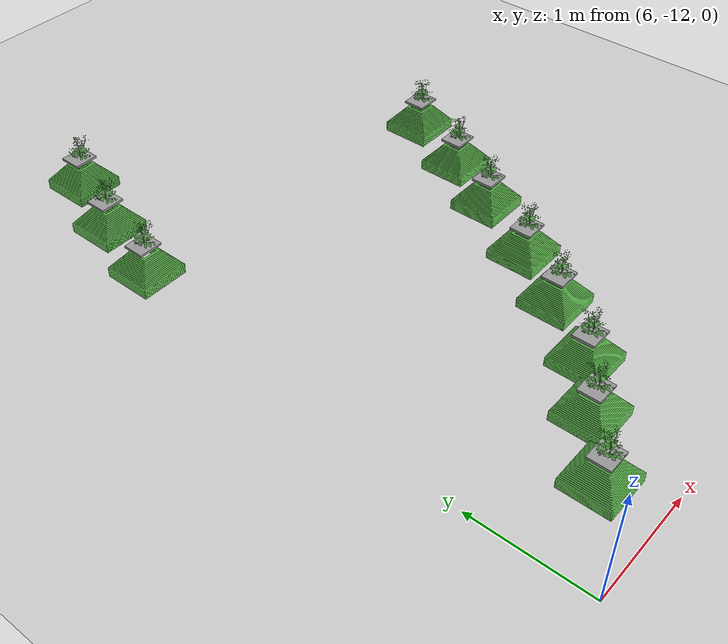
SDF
<sdf version="1.6">
 <world name="default">
  <model name="ground_plane">
   <static>1</static>
   <link name="link">
    <collision name="collision">
     <geometry><plane><normal>0 0 1</normal><size>100 100</size></plane></geometry>
     <surface><friction><ode><mu>100</mu><mu2>50</mu2></ode></friction></surface>
    </collision>
    <visual name="visual">
     <cast_shadows>0</cast_shadows>
     <geometry><plane><normal>0 0 1</normal><size>100 100</size></plane></geometry>
     <material>
      <script><uri>file://media/materials/scripts/gazebo.material</uri><name>Gazebo/Grey</name></script>
     </material>
    </visual>
   </link>
  </model>
  <model name="plant_127">
   <link name="link_0">
    <inertial>
     <mass>1</mass>
     <inertia>
      <ixx>0.0134051</ixx>
      <ixy>0</ixy>
      <ixz>0</ixz>
      <iyy>0.0134051</iyy>
      <iyz>0</iyz>
      <izz>0.0254102</izz>
     </inertia>
    </inertial>
    <gravity>0</gravity>
    <visual name="visual">
     <geometry><mesh><uri>model://square_pot/pot.stl</uri><scale>0.033 0.033 0.02</scale></mesh></geometry>
     <material>
      <lighting>1</lighting>
      <script><uri>file://media/materials/scripts/gazebo.material</uri><name>Gazebo/Grass</name></script>
      <ambient>0.3 0.3 0.3 1</ambient>
      <diffuse>0.7 0.7 0.7 1</diffuse>
      <specular>0.01 0.01 0.01 1</specular>
      <emissive>0 0 0 1</emissive>
      <shader type="vertex"><normal_map>__default__</normal_map></shader>
     </material>
    </visual>
    <collision name="collision">
     <pose>0 0 0.25 0 -0 0</pose>
     <geometry><box><size>0.4 0.4 0.4</size></box></geometry>
     <surface>
      <friction>
       <ode><mu>1</mu><mu2>1</mu2><fdir1>0 0 0</fdir1><slip1>0</slip1><slip2>0</slip2></ode>
       <torsional>
        <coefficient>1</coefficient>
        <patch_radius>0</patch_radius>
        <surface_radius>0</surface_radius>
        <use_patch_radius>1</use_patch_radius>
        <ode><slip>0</slip></ode>
       </torsional>
      </friction>
      <bounce><restitution_coefficient>0</restitution_coefficient><threshold>1e+06</threshold></bounce>
      <contact>
       <collide_without_contact>1</collide_without_contact>
       <collide_without_contact_bitmask>1</collide_without_contact_bitmask>
       <collide_bitmask>1</collide_bitmask>
       <ode>
        <soft_cfm>0</soft_cfm>
        <soft_erp>0.2</soft_erp>
        <kp>1e+13</kp>
        <kd>1</kd>
        <max_vel>0.01</max_vel>
        <min_depth>0</min_depth>
       </ode>
       <bullet>
        <split_impulse>1</split_impulse>
        <split_impulse_penetration_threshold>-0.01</split_impulse_penetration_threshold>
        <soft_cfm>0</soft_cfm>
        <soft_erp>0.2</soft_erp>
        <kp>1e+13</kp>
        <kd>1</kd>
       </bullet>
      </contact>
     </surface>
    </collision>
   </link>
   <link name="link_0_0">
    <pose>-0.011441 -0.008338 0.308474 0 -0 0</pose>
    <inertial>
     <mass>0.000736153</mass>
     <inertia>
      <ixx>2.11165e-06</ixx>
      <ixy>0</ixy>
      <ixz>0</ixz>
      <iyy>2.64382e-06</iyy>
      <iyz>0</iyz>
      <izz>4.70976e-06</izz>
     </inertia>
    </inertial>
    <visual name="visual">
     <geometry><box><size>0.206678 0.18452 0.019291</size></box></geometry>
     <material>
      <lighting>1</lighting>
      <script><uri>file://media/materials/scripts/gazebo.material</uri><name>Gazebo/Grey</name></script>
      <ambient>0.3 0.3 0.3 1</ambient>
      <diffuse>0.7 0.7 0.7 1</diffuse>
      <specular>0.01 0.01 0.01 1</specular>
      <emissive>0 0 0 1</emissive>
     </material>
    </visual>
    <collision name="collision">
     <geometry><box><size>0.206678 0.18452 0.019291</size></box></geometry>
     <surface>
      <friction>
       <ode><mu>1</mu><mu2>1</mu2><fdir1>0 0 0</fdir1><slip1>0</slip1><slip2>0</slip2></ode>
       <torsional>
        <coefficient>1</coefficient>
        <patch_radius>0</patch_radius>
        <surface_radius>0</surface_radius>
        <use_patch_radius>1</use_patch_radius>
        <ode><slip>0</slip></ode>
       </torsional>
      </friction>
      <bounce><restitution_coefficient>0</restitution_coefficient><threshold>1e+06</threshold></bounce>
      <contact>
       <collide_without_contact>0</collide_without_contact>
       <collide_without_contact_bitmask>1</collide_without_contact_bitmask>
       <collide_bitmask>1</collide_bitmask>
       <ode>
        <soft_cfm>0</soft_cfm>
        <soft_erp>0.2</soft_erp>
        <kp>1e+13</kp>
        <kd>1</kd>
        <max_vel>0.01</max_vel>
        <min_depth>0</min_depth>
       </ode>
       <bullet>
        <split_impulse>1</split_impulse>
        <split_impulse_penetration_threshold>-0.01</split_impulse_penetration_threshold>
        <soft_cfm>0</soft_cfm>
        <soft_erp>0.2</soft_erp>
        <kp>1e+13</kp>
        <kd>1</kd>
       </bullet>
      </contact>
     </surface>
    </collision>
   </link>
   <static>1</static>
   <pose>6.69006 -6.56863 0 0 -0 0</pose>
  </model>
  <model name="plant_128">
   <link name="link_0">
    <inertial>
     <mass>1</mass>
     <inertia>
      <ixx>0.0134051</ixx>
      <ixy>0</ixy>
      <ixz>0</ixz>
      <iyy>0.0134051</iyy>
      <iyz>0</iyz>
      <izz>0.0254102</izz>
     </inertia>
    </inertial>
    <gravity>0</gravity>
    <visual name="visual">
     <geometry><mesh><uri>model://square_pot/pot.stl</uri><scale>0.033 0.033 0.02</scale></mesh></geometry>
     <material>
      <lighting>1</lighting>
      <script><uri>file://media/materials/scripts/gazebo.material</uri><name>Gazebo/Grass</name></script>
      <ambient>0.3 0.3 0.3 1</ambient>
      <diffuse>0.7 0.7 0.7 1</diffuse>
      <specular>0.01 0.01 0.01 1</specular>
      <emissive>0 0 0 1</emissive>
      <shader type="vertex"><normal_map>__default__</normal_map></shader>
     </material>
    </visual>
    <collision name="collision">
     <pose>0 0 0.25 0 -0 0</pose>
     <geometry><box><size>0.4 0.4 0.4</size></box></geometry>
     <surface>
      <friction>
       <ode><mu>1</mu><mu2>1</mu2><fdir1>0 0 0</fdir1><slip1>0</slip1><slip2>0</slip2></ode>
       <torsional>
        <coefficient>1</coefficient>
        <patch_radius>0</patch_radius>
        <surface_radius>0</surface_radius>
        <use_patch_radius>1</use_patch_radius>
        <ode><slip>0</slip></ode>
       </torsional>
      </friction>
      <bounce><restitution_coefficient>0</restitution_coefficient><threshold>1e+06</threshold></bounce>
      <contact>
       <collide_without_contact>1</collide_without_contact>
       <collide_without_contact_bitmask>1</collide_without_contact_bitmask>
       <collide_bitmask>1</collide_bitmask>
       <ode>
        <soft_cfm>0</soft_cfm>
        <soft_erp>0.2</soft_erp>
        <kp>1e+13</kp>
        <kd>1</kd>
        <max_vel>0.01</max_vel>
        <min_depth>0</min_depth>
       </ode>
       <bullet>
        <split_impulse>1</split_impulse>
        <split_impulse_penetration_threshold>-0.01</split_impulse_penetration_threshold>
        <soft_cfm>0</soft_cfm>
        <soft_erp>0.2</soft_erp>
        <kp>1e+13</kp>
        <kd>1</kd>
       </bullet>
      </contact>
     </surface>
    </collision>
   </link>
   <link name="link_0_0">
    <pose>-0.011441 -0.008338 0.308474 0 -0 0</pose>
    <inertial>
     <mass>0.000736153</mass>
     <inertia>
      <ixx>2.11165e-06</ixx>
      <ixy>0</ixy>
      <ixz>0</ixz>
      <iyy>2.64382e-06</iyy>
      <iyz>0</iyz>
      <izz>4.70976e-06</izz>
     </inertia>
    </inertial>
    <visual name="visual">
     <geometry><box><size>0.206678 0.18452 0.019291</size></box></geometry>
     <material>
      <lighting>1</lighting>
      <script><uri>file://media/materials/scripts/gazebo.material</uri><name>Gazebo/Grey</name></script>
      <ambient>0.3 0.3 0.3 1</ambient>
      <diffuse>0.7 0.7 0.7 1</diffuse>
      <specular>0.01 0.01 0.01 1</specular>
      <emissive>0 0 0 1</emissive>
     </material>
    </visual>
    <collision name="collision">
     <geometry><box><size>0.206678 0.18452 0.019291</size></box></geometry>
     <surface>
      <friction>
       <ode><mu>1</mu><mu2>1</mu2><fdir1>0 0 0</fdir1><slip1>0</slip1><slip2>0</slip2></ode>
       <torsional>
        <coefficient>1</coefficient>
        <patch_radius>0</patch_radius>
        <surface_radius>0</surface_radius>
        <use_patch_radius>1</use_patch_radius>
        <ode><slip>0</slip></ode>
       </torsional>
      </friction>
      <bounce><restitution_coefficient>0</restitution_coefficient><threshold>1e+06</threshold></bounce>
      <contact>
       <collide_without_contact>0</collide_without_contact>
       <collide_without_contact_bitmask>1</collide_without_contact_bitmask>
       <collide_bitmask>1</collide_bitmask>
       <ode>
        <soft_cfm>0</soft_cfm>
        <soft_erp>0.2</soft_erp>
        <kp>1e+13</kp>
        <kd>1</kd>
        <max_vel>0.01</max_vel>
        <min_depth>0</min_depth>
       </ode>
       <bullet>
        <split_impulse>1</split_impulse>
        <split_impulse_penetration_threshold>-0.01</split_impulse_penetration_threshold>
        <soft_cfm>0</soft_cfm>
        <soft_erp>0.2</soft_erp>
        <kp>1e+13</kp>
        <kd>1</kd>
       </bullet>
      </contact>
     </surface>
    </collision>
   </link>
   <static>1</static>
   <pose>6.43751 -7.18429 0 0 -0 0</pose>
  </model>
  <model name="plant_129">
   <link name="link_0">
    <inertial>
     <mass>1</mass>
     <inertia>
      <ixx>0.0134051</ixx>
      <ixy>0</ixy>
      <ixz>0</ixz>
      <iyy>0.0134051</iyy>
      <iyz>0</iyz>
      <izz>0.0254102</izz>
     </inertia>
    </inertial>
    <gravity>0</gravity>
    <visual name="visual">
     <geometry><mesh><uri>model://square_pot/pot.stl</uri><scale>0.033 0.033 0.02</scale></mesh></geometry>
     <material>
      <lighting>1</lighting>
      <script><uri>file://media/materials/scripts/gazebo.material</uri><name>Gazebo/Grass</name></script>
      <ambient>0.3 0.3 0.3 1</ambient>
      <diffuse>0.7 0.7 0.7 1</diffuse>
      <specular>0.01 0.01 0.01 1</specular>
      <emissive>0 0 0 1</emissive>
      <shader type="vertex"><normal_map>__default__</normal_map></shader>
     </material>
    </visual>
    <collision name="collision">
     <pose>0 0 0.25 0 -0 0</pose>
     <geometry><box><size>0.4 0.4 0.4</size></box></geometry>
     <surface>
      <friction>
       <ode><mu>1</mu><mu2>1</mu2><fdir1>0 0 0</fdir1><slip1>0</slip1><slip2>0</slip2></ode>
       <torsional>
        <coefficient>1</coefficient>
        <patch_radius>0</patch_radius>
        <surface_radius>0</surface_radius>
        <use_patch_radius>1</use_patch_radius>
        <ode><slip>0</slip></ode>
       </torsional>
      </friction>
      <bounce><restitution_coefficient>0</restitution_coefficient><threshold>1e+06</threshold></bounce>
      <contact>
       <collide_without_contact>1</collide_without_contact>
       <collide_without_contact_bitmask>1</collide_without_contact_bitmask>
       <collide_bitmask>1</collide_bitmask>
       <ode>
        <soft_cfm>0</soft_cfm>
        <soft_erp>0.2</soft_erp>
        <kp>1e+13</kp>
        <kd>1</kd>
        <max_vel>0.01</max_vel>
        <min_depth>0</min_depth>
       </ode>
       <bullet>
        <split_impulse>1</split_impulse>
        <split_impulse_penetration_threshold>-0.01</split_impulse_penetration_threshold>
        <soft_cfm>0</soft_cfm>
        <soft_erp>0.2</soft_erp>
        <kp>1e+13</kp>
        <kd>1</kd>
       </bullet>
      </contact>
     </surface>
    </collision>
   </link>
   <link name="link_0_0">
    <pose>-0.011441 -0.008338 0.308474 0 -0 0</pose>
    <inertial>
     <mass>0.000736153</mass>
     <inertia>
      <ixx>2.11165e-06</ixx>
      <ixy>0</ixy>
      <ixz>0</ixz>
      <iyy>2.64382e-06</iyy>
      <iyz>0</iyz>
      <izz>4.70976e-06</izz>
     </inertia>
    </inertial>
    <visual name="visual">
     <geometry><box><size>0.206678 0.18452 0.019291</size></box></geometry>
     <material>
      <lighting>1</lighting>
      <script><uri>file://media/materials/scripts/gazebo.material</uri><name>Gazebo/Grey</name></script>
      <ambient>0.3 0.3 0.3 1</ambient>
      <diffuse>0.7 0.7 0.7 1</diffuse>
      <specular>0.01 0.01 0.01 1</specular>
      <emissive>0 0 0 1</emissive>
     </material>
    </visual>
    <collision name="collision">
     <geometry><box><size>0.206678 0.18452 0.019291</size></box></geometry>
     <surface>
      <friction>
       <ode><mu>1</mu><mu2>1</mu2><fdir1>0 0 0</fdir1><slip1>0</slip1><slip2>0</slip2></ode>
       <torsional>
        <coefficient>1</coefficient>
        <patch_radius>0</patch_radius>
        <surface_radius>0</surface_radius>
        <use_patch_radius>1</use_patch_radius>
        <ode><slip>0</slip></ode>
       </torsional>
      </friction>
      <bounce><restitution_coefficient>0</restitution_coefficient><threshold>1e+06</threshold></bounce>
      <contact>
       <collide_without_contact>0</collide_without_contact>
       <collide_without_contact_bitmask>1</collide_without_contact_bitmask>
       <collide_bitmask>1</collide_bitmask>
       <ode>
        <soft_cfm>0</soft_cfm>
        <soft_erp>0.2</soft_erp>
        <kp>1e+13</kp>
        <kd>1</kd>
        <max_vel>0.01</max_vel>
        <min_depth>0</min_depth>
       </ode>
       <bullet>
        <split_impulse>1</split_impulse>
        <split_impulse_penetration_threshold>-0.01</split_impulse_penetration_threshold>
        <soft_cfm>0</soft_cfm>
        <soft_erp>0.2</soft_erp>
        <kp>1e+13</kp>
        <kd>1</kd>
       </bullet>
      </contact>
     </surface>
    </collision>
   </link>
   <static>1</static>
   <pose>6.25957 -7.82144 0 0 -0 0</pose>
  </model>
  <model name="plant_134">
   <link name="link_0">
    <inertial>
     <mass>1</mass>
     <inertia>
      <ixx>0.0134051</ixx>
      <ixy>0</ixy>
      <ixz>0</ixz>
      <iyy>0.0134051</iyy>
      <iyz>0</iyz>
      <izz>0.0254102</izz>
     </inertia>
    </inertial>
    <gravity>0</gravity>
    <visual name="visual">
     <geometry><mesh><uri>model://square_pot/pot.stl</uri><scale>0.033 0.033 0.02</scale></mesh></geometry>
     <material>
      <lighting>1</lighting>
      <script><uri>file://media/materials/scripts/gazebo.material</uri><name>Gazebo/Grass</name></script>
      <ambient>0.3 0.3 0.3 1</ambient>
      <diffuse>0.7 0.7 0.7 1</diffuse>
      <specular>0.01 0.01 0.01 1</specular>
      <emissive>0 0 0 1</emissive>
      <shader type="vertex"><normal_map>__default__</normal_map></shader>
     </material>
    </visual>
    <collision name="collision">
     <pose>0 0 0.25 0 -0 0</pose>
     <geometry><box><size>0.4 0.4 0.4</size></box></geometry>
     <surface>
      <friction>
       <ode><mu>1</mu><mu2>1</mu2><fdir1>0 0 0</fdir1><slip1>0</slip1><slip2>0</slip2></ode>
       <torsional>
        <coefficient>1</coefficient>
        <patch_radius>0</patch_radius>
        <surface_radius>0</surface_radius>
        <use_patch_radius>1</use_patch_radius>
        <ode><slip>0</slip></ode>
       </torsional>
      </friction>
      <bounce><restitution_coefficient>0</restitution_coefficient><threshold>1e+06</threshold></bounce>
      <contact>
       <collide_without_contact>1</collide_without_contact>
       <collide_without_contact_bitmask>1</collide_without_contact_bitmask>
       <collide_bitmask>1</collide_bitmask>
       <ode>
        <soft_cfm>0</soft_cfm>
        <soft_erp>0.2</soft_erp>
        <kp>1e+13</kp>
        <kd>1</kd>
        <max_vel>0.01</max_vel>
        <min_depth>0</min_depth>
       </ode>
       <bullet>
        <split_impulse>1</split_impulse>
        <split_impulse_penetration_threshold>-0.01</split_impulse_penetration_threshold>
        <soft_cfm>0</soft_cfm>
        <soft_erp>0.2</soft_erp>
        <kp>1e+13</kp>
        <kd>1</kd>
       </bullet>
      </contact>
     </surface>
    </collision>
   </link>
   <link name="link_0_0">
    <pose>-0.011441 -0.008338 0.308474 0 -0 0</pose>
    <inertial>
     <mass>0.000736153</mass>
     <inertia>
      <ixx>2.11165e-06</ixx>
      <ixy>0</ixy>
      <ixz>0</ixz>
      <iyy>2.64382e-06</iyy>
      <iyz>0</iyz>
      <izz>4.70976e-06</izz>
     </inertia>
    </inertial>
    <visual name="visual">
     <geometry><box><size>0.206678 0.18452 0.019291</size></box></geometry>
     <material>
      <lighting>1</lighting>
      <script><uri>file://media/materials/scripts/gazebo.material</uri><name>Gazebo/Grey</name></script>
      <ambient>0.3 0.3 0.3 1</ambient>
      <diffuse>0.7 0.7 0.7 1</diffuse>
      <specular>0.01 0.01 0.01 1</specular>
      <emissive>0 0 0 1</emissive>
     </material>
    </visual>
    <collision name="collision">
     <geometry><box><size>0.206678 0.18452 0.019291</size></box></geometry>
     <surface>
      <friction>
       <ode><mu>1</mu><mu2>1</mu2><fdir1>0 0 0</fdir1><slip1>0</slip1><slip2>0</slip2></ode>
       <torsional>
        <coefficient>1</coefficient>
        <patch_radius>0</patch_radius>
        <surface_radius>0</surface_radius>
        <use_patch_radius>1</use_patch_radius>
        <ode><slip>0</slip></ode>
       </torsional>
      </friction>
      <bounce><restitution_coefficient>0</restitution_coefficient><threshold>1e+06</threshold></bounce>
      <contact>
       <collide_without_contact>0</collide_without_contact>
       <collide_without_contact_bitmask>1</collide_without_contact_bitmask>
       <collide_bitmask>1</collide_bitmask>
       <ode>
        <soft_cfm>0</soft_cfm>
        <soft_erp>0.2</soft_erp>
        <kp>1e+13</kp>
        <kd>1</kd>
        <max_vel>0.01</max_vel>
        <min_depth>0</min_depth>
       </ode>
       <bullet>
        <split_impulse>1</split_impulse>
        <split_impulse_penetration_threshold>-0.01</split_impulse_penetration_threshold>
        <soft_cfm>0</soft_cfm>
        <soft_erp>0.2</soft_erp>
        <kp>1e+13</kp>
        <kd>1</kd>
       </bullet>
      </contact>
     </surface>
    </collision>
   </link>
   <static>1</static>
   <pose>9.24963 -8.19377 0 0 -0 0</pose>
  </model>
  <model name="plant_135">
   <link name="link_0">
    <inertial>
     <mass>1</mass>
     <inertia>
      <ixx>0.0134051</ixx>
      <ixy>0</ixy>
      <ixz>0</ixz>
      <iyy>0.0134051</iyy>
      <iyz>0</iyz>
      <izz>0.0254102</izz>
     </inertia>
    </inertial>
    <gravity>0</gravity>
    <visual name="visual">
     <geometry><mesh><uri>model://square_pot/pot.stl</uri><scale>0.033 0.033 0.02</scale></mesh></geometry>
     <material>
      <lighting>1</lighting>
      <script><uri>file://media/materials/scripts/gazebo.material</uri><name>Gazebo/Grass</name></script>
      <ambient>0.3 0.3 0.3 1</ambient>
      <diffuse>0.7 0.7 0.7 1</diffuse>
      <specular>0.01 0.01 0.01 1</specular>
      <emissive>0 0 0 1</emissive>
      <shader type="vertex"><normal_map>__default__</normal_map></shader>
     </material>
    </visual>
    <collision name="collision">
     <pose>0 0 0.25 0 -0 0</pose>
     <geometry><box><size>0.4 0.4 0.4</size></box></geometry>
     <surface>
      <friction>
       <ode><mu>1</mu><mu2>1</mu2><fdir1>0 0 0</fdir1><slip1>0</slip1><slip2>0</slip2></ode>
       <torsional>
        <coefficient>1</coefficient>
        <patch_radius>0</patch_radius>
        <surface_radius>0</surface_radius>
        <use_patch_radius>1</use_patch_radius>
        <ode><slip>0</slip></ode>
       </torsional>
      </friction>
      <bounce><restitution_coefficient>0</restitution_coefficient><threshold>1e+06</threshold></bounce>
      <contact>
       <collide_without_contact>1</collide_without_contact>
       <collide_without_contact_bitmask>1</collide_without_contact_bitmask>
       <collide_bitmask>1</collide_bitmask>
       <ode>
        <soft_cfm>0</soft_cfm>
        <soft_erp>0.2</soft_erp>
        <kp>1e+13</kp>
        <kd>1</kd>
        <max_vel>0.01</max_vel>
        <min_depth>0</min_depth>
       </ode>
       <bullet>
        <split_impulse>1</split_impulse>
        <split_impulse_penetration_threshold>-0.01</split_impulse_penetration_threshold>
        <soft_cfm>0</soft_cfm>
        <soft_erp>0.2</soft_erp>
        <kp>1e+13</kp>
        <kd>1</kd>
       </bullet>
      </contact>
     </surface>
    </collision>
   </link>
   <link name="link_0_0">
    <pose>-0.011441 -0.008338 0.308474 0 -0 0</pose>
    <inertial>
     <mass>0.000736153</mass>
     <inertia>
      <ixx>2.11165e-06</ixx>
      <ixy>0</ixy>
      <ixz>0</ixz>
      <iyy>2.64382e-06</iyy>
      <iyz>0</iyz>
      <izz>4.70976e-06</izz>
     </inertia>
    </inertial>
    <visual name="visual">
     <geometry><box><size>0.206678 0.18452 0.019291</size></box></geometry>
     <material>
      <lighting>1</lighting>
      <script><uri>file://media/materials/scripts/gazebo.material</uri><name>Gazebo/Grey</name></script>
      <ambient>0.3 0.3 0.3 1</ambient>
      <diffuse>0.7 0.7 0.7 1</diffuse>
      <specular>0.01 0.01 0.01 1</specular>
      <emissive>0 0 0 1</emissive>
     </material>
    </visual>
    <collision name="collision">
     <geometry><box><size>0.206678 0.18452 0.019291</size></box></geometry>
     <surface>
      <friction>
       <ode><mu>1</mu><mu2>1</mu2><fdir1>0 0 0</fdir1><slip1>0</slip1><slip2>0</slip2></ode>
       <torsional>
        <coefficient>1</coefficient>
        <patch_radius>0</patch_radius>
        <surface_radius>0</surface_radius>
        <use_patch_radius>1</use_patch_radius>
        <ode><slip>0</slip></ode>
       </torsional>
      </friction>
      <bounce><restitution_coefficient>0</restitution_coefficient><threshold>1e+06</threshold></bounce>
      <contact>
       <collide_without_contact>0</collide_without_contact>
       <collide_without_contact_bitmask>1</collide_without_contact_bitmask>
       <collide_bitmask>1</collide_bitmask>
       <ode>
        <soft_cfm>0</soft_cfm>
        <soft_erp>0.2</soft_erp>
        <kp>1e+13</kp>
        <kd>1</kd>
        <max_vel>0.01</max_vel>
        <min_depth>0</min_depth>
       </ode>
       <bullet>
        <split_impulse>1</split_impulse>
        <split_impulse_penetration_threshold>-0.01</split_impulse_penetration_threshold>
        <soft_cfm>0</soft_cfm>
        <soft_erp>0.2</soft_erp>
        <kp>1e+13</kp>
        <kd>1</kd>
       </bullet>
      </contact>
     </surface>
    </collision>
   </link>
   <static>1</static>
   <pose>8.97708 -8.79542 0 0 -0 0</pose>
  </model>
  <model name="plant_136">
   <link name="link_0">
    <inertial>
     <mass>1</mass>
     <inertia>
      <ixx>0.0134051</ixx>
      <ixy>0</ixy>
      <ixz>0</ixz>
      <iyy>0.0134051</iyy>
      <iyz>0</iyz>
      <izz>0.0254102</izz>
     </inertia>
    </inertial>
    <gravity>0</gravity>
    <visual name="visual">
     <geometry><mesh><uri>model://square_pot/pot.stl</uri><scale>0.033 0.033 0.02</scale></mesh></geometry>
     <material>
      <lighting>1</lighting>
      <script><uri>file://media/materials/scripts/gazebo.material</uri><name>Gazebo/Grass</name></script>
      <ambient>0.3 0.3 0.3 1</ambient>
      <diffuse>0.7 0.7 0.7 1</diffuse>
      <specular>0.01 0.01 0.01 1</specular>
      <emissive>0 0 0 1</emissive>
      <shader type="vertex"><normal_map>__default__</normal_map></shader>
     </material>
    </visual>
    <collision name="collision">
     <pose>0 0 0.25 0 -0 0</pose>
     <geometry><box><size>0.4 0.4 0.4</size></box></geometry>
     <surface>
      <friction>
       <ode><mu>1</mu><mu2>1</mu2><fdir1>0 0 0</fdir1><slip1>0</slip1><slip2>0</slip2></ode>
       <torsional>
        <coefficient>1</coefficient>
        <patch_radius>0</patch_radius>
        <surface_radius>0</surface_radius>
        <use_patch_radius>1</use_patch_radius>
        <ode><slip>0</slip></ode>
       </torsional>
      </friction>
      <bounce><restitution_coefficient>0</restitution_coefficient><threshold>1e+06</threshold></bounce>
      <contact>
       <collide_without_contact>1</collide_without_contact>
       <collide_without_contact_bitmask>1</collide_without_contact_bitmask>
       <collide_bitmask>1</collide_bitmask>
       <ode>
        <soft_cfm>0</soft_cfm>
        <soft_erp>0.2</soft_erp>
        <kp>1e+13</kp>
        <kd>1</kd>
        <max_vel>0.01</max_vel>
        <min_depth>0</min_depth>
       </ode>
       <bullet>
        <split_impulse>1</split_impulse>
        <split_impulse_penetration_threshold>-0.01</split_impulse_penetration_threshold>
        <soft_cfm>0</soft_cfm>
        <soft_erp>0.2</soft_erp>
        <kp>1e+13</kp>
        <kd>1</kd>
       </bullet>
      </contact>
     </surface>
    </collision>
   </link>
   <link name="link_0_0">
    <pose>-0.011441 -0.008338 0.308474 0 -0 0</pose>
    <inertial>
     <mass>0.000736153</mass>
     <inertia>
      <ixx>2.11165e-06</ixx>
      <ixy>0</ixy>
      <ixz>0</ixz>
      <iyy>2.64382e-06</iyy>
      <iyz>0</iyz>
      <izz>4.70976e-06</izz>
     </inertia>
    </inertial>
    <visual name="visual">
     <geometry><box><size>0.206678 0.18452 0.019291</size></box></geometry>
     <material>
      <lighting>1</lighting>
      <script><uri>file://media/materials/scripts/gazebo.material</uri><name>Gazebo/Grey</name></script>
      <ambient>0.3 0.3 0.3 1</ambient>
      <diffuse>0.7 0.7 0.7 1</diffuse>
      <specular>0.01 0.01 0.01 1</specular>
      <emissive>0 0 0 1</emissive>
     </material>
    </visual>
    <collision name="collision">
     <geometry><box><size>0.206678 0.18452 0.019291</size></box></geometry>
     <surface>
      <friction>
       <ode><mu>1</mu><mu2>1</mu2><fdir1>0 0 0</fdir1><slip1>0</slip1><slip2>0</slip2></ode>
       <torsional>
        <coefficient>1</coefficient>
        <patch_radius>0</patch_radius>
        <surface_radius>0</surface_radius>
        <use_patch_radius>1</use_patch_radius>
        <ode><slip>0</slip></ode>
       </torsional>
      </friction>
      <bounce><restitution_coefficient>0</restitution_coefficient><threshold>1e+06</threshold></bounce>
      <contact>
       <collide_without_contact>0</collide_without_contact>
       <collide_without_contact_bitmask>1</collide_without_contact_bitmask>
       <collide_bitmask>1</collide_bitmask>
       <ode>
        <soft_cfm>0</soft_cfm>
        <soft_erp>0.2</soft_erp>
        <kp>1e+13</kp>
        <kd>1</kd>
        <max_vel>0.01</max_vel>
        <min_depth>0</min_depth>
       </ode>
       <bullet>
        <split_impulse>1</split_impulse>
        <split_impulse_penetration_threshold>-0.01</split_impulse_penetration_threshold>
        <soft_cfm>0</soft_cfm>
        <soft_erp>0.2</soft_erp>
        <kp>1e+13</kp>
        <kd>1</kd>
       </bullet>
      </contact>
     </surface>
    </collision>
   </link>
   <static>1</static>
   <pose>8.68211 -9.32172 0 0 -0 0</pose>
  </model>
  <model name="plant_137">
   <link name="link_0">
    <inertial>
     <mass>1</mass>
     <inertia>
      <ixx>0.0134051</ixx>
      <ixy>0</ixy>
      <ixz>0</ixz>
      <iyy>0.0134051</iyy>
      <iyz>0</iyz>
      <izz>0.0254102</izz>
     </inertia>
    </inertial>
    <gravity>0</gravity>
    <visual name="visual">
     <geometry><mesh><uri>model://square_pot/pot.stl</uri><scale>0.033 0.033 0.02</scale></mesh></geometry>
     <material>
      <lighting>1</lighting>
      <script><uri>file://media/materials/scripts/gazebo.material</uri><name>Gazebo/Grass</name></script>
      <ambient>0.3 0.3 0.3 1</ambient>
      <diffuse>0.7 0.7 0.7 1</diffuse>
      <specular>0.01 0.01 0.01 1</specular>
      <emissive>0 0 0 1</emissive>
      <shader type="vertex"><normal_map>__default__</normal_map></shader>
     </material>
    </visual>
    <collision name="collision">
     <pose>0 0 0.25 0 -0 0</pose>
     <geometry><box><size>0.4 0.4 0.4</size></box></geometry>
     <surface>
      <friction>
       <ode><mu>1</mu><mu2>1</mu2><fdir1>0 0 0</fdir1><slip1>0</slip1><slip2>0</slip2></ode>
       <torsional>
        <coefficient>1</coefficient>
        <patch_radius>0</patch_radius>
        <surface_radius>0</surface_radius>
        <use_patch_radius>1</use_patch_radius>
        <ode><slip>0</slip></ode>
       </torsional>
      </friction>
      <bounce><restitution_coefficient>0</restitution_coefficient><threshold>1e+06</threshold></bounce>
      <contact>
       <collide_without_contact>1</collide_without_contact>
       <collide_without_contact_bitmask>1</collide_without_contact_bitmask>
       <collide_bitmask>1</collide_bitmask>
       <ode>
        <soft_cfm>0</soft_cfm>
        <soft_erp>0.2</soft_erp>
        <kp>1e+13</kp>
        <kd>1</kd>
        <max_vel>0.01</max_vel>
        <min_depth>0</min_depth>
       </ode>
       <bullet>
        <split_impulse>1</split_impulse>
        <split_impulse_penetration_threshold>-0.01</split_impulse_penetration_threshold>
        <soft_cfm>0</soft_cfm>
        <soft_erp>0.2</soft_erp>
        <kp>1e+13</kp>
        <kd>1</kd>
       </bullet>
      </contact>
     </surface>
    </collision>
   </link>
   <link name="link_0_0">
    <pose>-0.011441 -0.008338 0.308474 0 -0 0</pose>
    <inertial>
     <mass>0.000736153</mass>
     <inertia>
      <ixx>2.11165e-06</ixx>
      <ixy>0</ixy>
      <ixz>0</ixz>
      <iyy>2.64382e-06</iyy>
      <iyz>0</iyz>
      <izz>4.70976e-06</izz>
     </inertia>
    </inertial>
    <visual name="visual">
     <geometry><box><size>0.206678 0.18452 0.019291</size></box></geometry>
     <material>
      <lighting>1</lighting>
      <script><uri>file://media/materials/scripts/gazebo.material</uri><name>Gazebo/Grey</name></script>
      <ambient>0.3 0.3 0.3 1</ambient>
      <diffuse>0.7 0.7 0.7 1</diffuse>
      <specular>0.01 0.01 0.01 1</specular>
      <emissive>0 0 0 1</emissive>
     </material>
    </visual>
    <collision name="collision">
     <geometry><box><size>0.206678 0.18452 0.019291</size></box></geometry>
     <surface>
      <friction>
       <ode><mu>1</mu><mu2>1</mu2><fdir1>0 0 0</fdir1><slip1>0</slip1><slip2>0</slip2></ode>
       <torsional>
        <coefficient>1</coefficient>
        <patch_radius>0</patch_radius>
        <surface_radius>0</surface_radius>
        <use_patch_radius>1</use_patch_radius>
        <ode><slip>0</slip></ode>
       </torsional>
      </friction>
      <bounce><restitution_coefficient>0</restitution_coefficient><threshold>1e+06</threshold></bounce>
      <contact>
       <collide_without_contact>0</collide_without_contact>
       <collide_without_contact_bitmask>1</collide_without_contact_bitmask>
       <collide_bitmask>1</collide_bitmask>
       <ode>
        <soft_cfm>0</soft_cfm>
        <soft_erp>0.2</soft_erp>
        <kp>1e+13</kp>
        <kd>1</kd>
        <max_vel>0.01</max_vel>
        <min_depth>0</min_depth>
       </ode>
       <bullet>
        <split_impulse>1</split_impulse>
        <split_impulse_penetration_threshold>-0.01</split_impulse_penetration_threshold>
        <soft_cfm>0</soft_cfm>
        <soft_erp>0.2</soft_erp>
        <kp>1e+13</kp>
        <kd>1</kd>
       </bullet>
      </contact>
     </surface>
    </collision>
   </link>
   <static>1</static>
   <pose>8.34915 -9.91039 0 0 -0 0</pose>
  </model>
  <model name="plant_138">
   <link name="link_0">
    <inertial>
     <mass>1</mass>
     <inertia>
      <ixx>0.0134051</ixx>
      <ixy>0</ixy>
      <ixz>0</ixz>
      <iyy>0.0134051</iyy>
      <iyz>0</iyz>
      <izz>0.0254102</izz>
     </inertia>
    </inertial>
    <gravity>0</gravity>
    <visual name="visual">
     <geometry><mesh><uri>model://square_pot/pot.stl</uri><scale>0.033 0.033 0.02</scale></mesh></geometry>
     <material>
      <lighting>1</lighting>
      <script><uri>file://media/materials/scripts/gazebo.material</uri><name>Gazebo/Grass</name></script>
      <ambient>0.3 0.3 0.3 1</ambient>
      <diffuse>0.7 0.7 0.7 1</diffuse>
      <specular>0.01 0.01 0.01 1</specular>
      <emissive>0 0 0 1</emissive>
      <shader type="vertex"><normal_map>__default__</normal_map></shader>
     </material>
    </visual>
    <collision name="collision">
     <pose>0 0 0.25 0 -0 0</pose>
     <geometry><box><size>0.4 0.4 0.4</size></box></geometry>
     <surface>
      <friction>
       <ode><mu>1</mu><mu2>1</mu2><fdir1>0 0 0</fdir1><slip1>0</slip1><slip2>0</slip2></ode>
       <torsional>
        <coefficient>1</coefficient>
        <patch_radius>0</patch_radius>
        <surface_radius>0</surface_radius>
        <use_patch_radius>1</use_patch_radius>
        <ode><slip>0</slip></ode>
       </torsional>
      </friction>
      <bounce><restitution_coefficient>0</restitution_coefficient><threshold>1e+06</threshold></bounce>
      <contact>
       <collide_without_contact>1</collide_without_contact>
       <collide_without_contact_bitmask>1</collide_without_contact_bitmask>
       <collide_bitmask>1</collide_bitmask>
       <ode>
        <soft_cfm>0</soft_cfm>
        <soft_erp>0.2</soft_erp>
        <kp>1e+13</kp>
        <kd>1</kd>
        <max_vel>0.01</max_vel>
        <min_depth>0</min_depth>
       </ode>
       <bullet>
        <split_impulse>1</split_impulse>
        <split_impulse_penetration_threshold>-0.01</split_impulse_penetration_threshold>
        <soft_cfm>0</soft_cfm>
        <soft_erp>0.2</soft_erp>
        <kp>1e+13</kp>
        <kd>1</kd>
       </bullet>
      </contact>
     </surface>
    </collision>
   </link>
   <link name="link_0_0">
    <pose>-0.011441 -0.008338 0.308474 0 -0 0</pose>
    <inertial>
     <mass>0.000736153</mass>
     <inertia>
      <ixx>2.11165e-06</ixx>
      <ixy>0</ixy>
      <ixz>0</ixz>
      <iyy>2.64382e-06</iyy>
      <iyz>0</iyz>
      <izz>4.70976e-06</izz>
     </inertia>
    </inertial>
    <visual name="visual">
     <geometry><box><size>0.206678 0.18452 0.019291</size></box></geometry>
     <material>
      <lighting>1</lighting>
      <script><uri>file://media/materials/scripts/gazebo.material</uri><name>Gazebo/Grey</name></script>
      <ambient>0.3 0.3 0.3 1</ambient>
      <diffuse>0.7 0.7 0.7 1</diffuse>
      <specular>0.01 0.01 0.01 1</specular>
      <emissive>0 0 0 1</emissive>
     </material>
    </visual>
    <collision name="collision">
     <geometry><box><size>0.206678 0.18452 0.019291</size></box></geometry>
     <surface>
      <friction>
       <ode><mu>1</mu><mu2>1</mu2><fdir1>0 0 0</fdir1><slip1>0</slip1><slip2>0</slip2></ode>
       <torsional>
        <coefficient>1</coefficient>
        <patch_radius>0</patch_radius>
        <surface_radius>0</surface_radius>
        <use_patch_radius>1</use_patch_radius>
        <ode><slip>0</slip></ode>
       </torsional>
      </friction>
      <bounce><restitution_coefficient>0</restitution_coefficient><threshold>1e+06</threshold></bounce>
      <contact>
       <collide_without_contact>0</collide_without_contact>
       <collide_without_contact_bitmask>1</collide_without_contact_bitmask>
       <collide_bitmask>1</collide_bitmask>
       <ode>
        <soft_cfm>0</soft_cfm>
        <soft_erp>0.2</soft_erp>
        <kp>1e+13</kp>
        <kd>1</kd>
        <max_vel>0.01</max_vel>
        <min_depth>0</min_depth>
       </ode>
       <bullet>
        <split_impulse>1</split_impulse>
        <split_impulse_penetration_threshold>-0.01</split_impulse_penetration_threshold>
        <soft_cfm>0</soft_cfm>
        <soft_erp>0.2</soft_erp>
        <kp>1e+13</kp>
        <kd>1</kd>
       </bullet>
      </contact>
     </surface>
    </collision>
   </link>
   <static>1</static>
   <pose>8.02152 -10.4062 0 0 -0 0</pose>
  </model>
  <model name="plant_139">
   <link name="link_0">
    <inertial>
     <mass>1</mass>
     <inertia>
      <ixx>0.0134051</ixx>
      <ixy>0</ixy>
      <ixz>0</ixz>
      <iyy>0.0134051</iyy>
      <iyz>0</iyz>
      <izz>0.0254102</izz>
     </inertia>
    </inertial>
    <gravity>0</gravity>
    <visual name="visual">
     <geometry><mesh><uri>model://square_pot/pot.stl</uri><scale>0.033 0.033 0.02</scale></mesh></geometry>
     <material>
      <lighting>1</lighting>
      <script><uri>file://media/materials/scripts/gazebo.material</uri><name>Gazebo/Grass</name></script>
      <ambient>0.3 0.3 0.3 1</ambient>
      <diffuse>0.7 0.7 0.7 1</diffuse>
      <specular>0.01 0.01 0.01 1</specular>
      <emissive>0 0 0 1</emissive>
      <shader type="vertex"><normal_map>__default__</normal_map></shader>
     </material>
    </visual>
    <collision name="collision">
     <pose>0 0 0.25 0 -0 0</pose>
     <geometry><box><size>0.4 0.4 0.4</size></box></geometry>
     <surface>
      <friction>
       <ode><mu>1</mu><mu2>1</mu2><fdir1>0 0 0</fdir1><slip1>0</slip1><slip2>0</slip2></ode>
       <torsional>
        <coefficient>1</coefficient>
        <patch_radius>0</patch_radius>
        <surface_radius>0</surface_radius>
        <use_patch_radius>1</use_patch_radius>
        <ode><slip>0</slip></ode>
       </torsional>
      </friction>
      <bounce><restitution_coefficient>0</restitution_coefficient><threshold>1e+06</threshold></bounce>
      <contact>
       <collide_without_contact>1</collide_without_contact>
       <collide_without_contact_bitmask>1</collide_without_contact_bitmask>
       <collide_bitmask>1</collide_bitmask>
       <ode>
        <soft_cfm>0</soft_cfm>
        <soft_erp>0.2</soft_erp>
        <kp>1e+13</kp>
        <kd>1</kd>
        <max_vel>0.01</max_vel>
        <min_depth>0</min_depth>
       </ode>
       <bullet>
        <split_impulse>1</split_impulse>
        <split_impulse_penetration_threshold>-0.01</split_impulse_penetration_threshold>
        <soft_cfm>0</soft_cfm>
        <soft_erp>0.2</soft_erp>
        <kp>1e+13</kp>
        <kd>1</kd>
       </bullet>
      </contact>
     </surface>
    </collision>
   </link>
   <link name="link_0_0">
    <pose>-0.011441 -0.008338 0.308474 0 -0 0</pose>
    <inertial>
     <mass>0.000736153</mass>
     <inertia>
      <ixx>2.11165e-06</ixx>
      <ixy>0</ixy>
      <ixz>0</ixz>
      <iyy>2.64382e-06</iyy>
      <iyz>0</iyz>
      <izz>4.70976e-06</izz>
     </inertia>
    </inertial>
    <visual name="visual">
     <geometry><box><size>0.206678 0.18452 0.019291</size></box></geometry>
     <material>
      <lighting>1</lighting>
      <script><uri>file://media/materials/scripts/gazebo.material</uri><name>Gazebo/Grey</name></script>
      <ambient>0.3 0.3 0.3 1</ambient>
      <diffuse>0.7 0.7 0.7 1</diffuse>
      <specular>0.01 0.01 0.01 1</specular>
      <emissive>0 0 0 1</emissive>
     </material>
    </visual>
    <collision name="collision">
     <geometry><box><size>0.206678 0.18452 0.019291</size></box></geometry>
     <surface>
      <friction>
       <ode><mu>1</mu><mu2>1</mu2><fdir1>0 0 0</fdir1><slip1>0</slip1><slip2>0</slip2></ode>
       <torsional>
        <coefficient>1</coefficient>
        <patch_radius>0</patch_radius>
        <surface_radius>0</surface_radius>
        <use_patch_radius>1</use_patch_radius>
        <ode><slip>0</slip></ode>
       </torsional>
      </friction>
      <bounce><restitution_coefficient>0</restitution_coefficient><threshold>1e+06</threshold></bounce>
      <contact>
       <collide_without_contact>0</collide_without_contact>
       <collide_without_contact_bitmask>1</collide_without_contact_bitmask>
       <collide_bitmask>1</collide_bitmask>
       <ode>
        <soft_cfm>0</soft_cfm>
        <soft_erp>0.2</soft_erp>
        <kp>1e+13</kp>
        <kd>1</kd>
        <max_vel>0.01</max_vel>
        <min_depth>0</min_depth>
       </ode>
       <bullet>
        <split_impulse>1</split_impulse>
        <split_impulse_penetration_threshold>-0.01</split_impulse_penetration_threshold>
        <soft_cfm>0</soft_cfm>
        <soft_erp>0.2</soft_erp>
        <kp>1e+13</kp>
        <kd>1</kd>
       </bullet>
      </contact>
     </surface>
    </collision>
   </link>
   <static>1</static>
   <pose>7.63071 -10.9031 0 0 -0 0</pose>
  </model>
  <model name="plant_140">
   <link name="link_0">
    <inertial>
     <mass>1</mass>
     <inertia>
      <ixx>0.0134051</ixx>
      <ixy>0</ixy>
      <ixz>0</ixz>
      <iyy>0.0134051</iyy>
      <iyz>0</iyz>
      <izz>0.0254102</izz>
     </inertia>
    </inertial>
    <gravity>0</gravity>
    <visual name="visual">
     <geometry><mesh><uri>model://square_pot/pot.stl</uri><scale>0.033 0.033 0.02</scale></mesh></geometry>
     <material>
      <lighting>1</lighting>
      <script><uri>file://media/materials/scripts/gazebo.material</uri><name>Gazebo/Grass</name></script>
      <ambient>0.3 0.3 0.3 1</ambient>
      <diffuse>0.7 0.7 0.7 1</diffuse>
      <specular>0.01 0.01 0.01 1</specular>
      <emissive>0 0 0 1</emissive>
      <shader type="vertex"><normal_map>__default__</normal_map></shader>
     </material>
    </visual>
    <collision name="collision">
     <pose>0 0 0.25 0 -0 0</pose>
     <geometry><box><size>0.4 0.4 0.4</size></box></geometry>
     <surface>
      <friction>
       <ode><mu>1</mu><mu2>1</mu2><fdir1>0 0 0</fdir1><slip1>0</slip1><slip2>0</slip2></ode>
       <torsional>
        <coefficient>1</coefficient>
        <patch_radius>0</patch_radius>
        <surface_radius>0</surface_radius>
        <use_patch_radius>1</use_patch_radius>
        <ode><slip>0</slip></ode>
       </torsional>
      </friction>
      <bounce><restitution_coefficient>0</restitution_coefficient><threshold>1e+06</threshold></bounce>
      <contact>
       <collide_without_contact>1</collide_without_contact>
       <collide_without_contact_bitmask>1</collide_without_contact_bitmask>
       <collide_bitmask>1</collide_bitmask>
       <ode>
        <soft_cfm>0</soft_cfm>
        <soft_erp>0.2</soft_erp>
        <kp>1e+13</kp>
        <kd>1</kd>
        <max_vel>0.01</max_vel>
        <min_depth>0</min_depth>
       </ode>
       <bullet>
        <split_impulse>1</split_impulse>
        <split_impulse_penetration_threshold>-0.01</split_impulse_penetration_threshold>
        <soft_cfm>0</soft_cfm>
        <soft_erp>0.2</soft_erp>
        <kp>1e+13</kp>
        <kd>1</kd>
       </bullet>
      </contact>
     </surface>
    </collision>
   </link>
   <link name="link_0_0">
    <pose>-0.011441 -0.008338 0.308474 0 -0 0</pose>
    <inertial>
     <mass>0.000736153</mass>
     <inertia>
      <ixx>2.11165e-06</ixx>
      <ixy>0</ixy>
      <ixz>0</ixz>
      <iyy>2.64382e-06</iyy>
      <iyz>0</iyz>
      <izz>4.70976e-06</izz>
     </inertia>
    </inertial>
    <visual name="visual">
     <geometry><box><size>0.206678 0.18452 0.019291</size></box></geometry>
     <material>
      <lighting>1</lighting>
      <script><uri>file://media/materials/scripts/gazebo.material</uri><name>Gazebo/Grey</name></script>
      <ambient>0.3 0.3 0.3 1</ambient>
      <diffuse>0.7 0.7 0.7 1</diffuse>
      <specular>0.01 0.01 0.01 1</specular>
      <emissive>0 0 0 1</emissive>
     </material>
    </visual>
    <collision name="collision">
     <geometry><box><size>0.206678 0.18452 0.019291</size></box></geometry>
     <surface>
      <friction>
       <ode><mu>1</mu><mu2>1</mu2><fdir1>0 0 0</fdir1><slip1>0</slip1><slip2>0</slip2></ode>
       <torsional>
        <coefficient>1</coefficient>
        <patch_radius>0</patch_radius>
        <surface_radius>0</surface_radius>
        <use_patch_radius>1</use_patch_radius>
        <ode><slip>0</slip></ode>
       </torsional>
      </friction>
      <bounce><restitution_coefficient>0</restitution_coefficient><threshold>1e+06</threshold></bounce>
      <contact>
       <collide_without_contact>0</collide_without_contact>
       <collide_without_contact_bitmask>1</collide_without_contact_bitmask>
       <collide_bitmask>1</collide_bitmask>
       <ode>
        <soft_cfm>0</soft_cfm>
        <soft_erp>0.2</soft_erp>
        <kp>1e+13</kp>
        <kd>1</kd>
        <max_vel>0.01</max_vel>
        <min_depth>0</min_depth>
       </ode>
       <bullet>
        <split_impulse>1</split_impulse>
        <split_impulse_penetration_threshold>-0.01</split_impulse_penetration_threshold>
        <soft_cfm>0</soft_cfm>
        <soft_erp>0.2</soft_erp>
        <kp>1e+13</kp>
        <kd>1</kd>
       </bullet>
      </contact>
     </surface>
    </collision>
   </link>
   <static>1</static>
   <pose>7.20648 -11.2023 0 0 -0 0</pose>
  </model>
  <model name="plant_141">
   <link name="link_0">
    <inertial>
     <mass>1</mass>
     <inertia>
      <ixx>0.0134051</ixx>
      <ixy>0</ixy>
      <ixz>0</ixz>
      <iyy>0.0134051</iyy>
      <iyz>0</iyz>
      <izz>0.0254102</izz>
     </inertia>
    </inertial>
    <gravity>0</gravity>
    <visual name="visual">
     <geometry><mesh><uri>model://square_pot/pot.stl</uri><scale>0.033 0.033 0.02</scale></mesh></geometry>
     <material>
      <lighting>1</lighting>
      <script><uri>file://media/materials/scripts/gazebo.material</uri><name>Gazebo/Grass</name></script>
      <ambient>0.3 0.3 0.3 1</ambient>
      <diffuse>0.7 0.7 0.7 1</diffuse>
      <specular>0.01 0.01 0.01 1</specular>
      <emissive>0 0 0 1</emissive>
      <shader type="vertex"><normal_map>__default__</normal_map></shader>
     </material>
    </visual>
    <collision name="collision">
     <pose>0 0 0.25 0 -0 0</pose>
     <geometry><box><size>0.4 0.4 0.4</size></box></geometry>
     <surface>
      <friction>
       <ode><mu>1</mu><mu2>1</mu2><fdir1>0 0 0</fdir1><slip1>0</slip1><slip2>0</slip2></ode>
       <torsional>
        <coefficient>1</coefficient>
        <patch_radius>0</patch_radius>
        <surface_radius>0</surface_radius>
        <use_patch_radius>1</use_patch_radius>
        <ode><slip>0</slip></ode>
       </torsional>
      </friction>
      <bounce><restitution_coefficient>0</restitution_coefficient><threshold>1e+06</threshold></bounce>
      <contact>
       <collide_without_contact>1</collide_without_contact>
       <collide_without_contact_bitmask>1</collide_without_contact_bitmask>
       <collide_bitmask>1</collide_bitmask>
       <ode>
        <soft_cfm>0</soft_cfm>
        <soft_erp>0.2</soft_erp>
        <kp>1e+13</kp>
        <kd>1</kd>
        <max_vel>0.01</max_vel>
        <min_depth>0</min_depth>
       </ode>
       <bullet>
        <split_impulse>1</split_impulse>
        <split_impulse_penetration_threshold>-0.01</split_impulse_penetration_threshold>
        <soft_cfm>0</soft_cfm>
        <soft_erp>0.2</soft_erp>
        <kp>1e+13</kp>
        <kd>1</kd>
       </bullet>
      </contact>
     </surface>
    </collision>
   </link>
   <link name="link_0_0">
    <pose>-0.011441 -0.008338 0.308474 0 -0 0</pose>
    <inertial>
     <mass>0.000736153</mass>
     <inertia>
      <ixx>2.11165e-06</ixx>
      <ixy>0</ixy>
      <ixz>0</ixz>
      <iyy>2.64382e-06</iyy>
      <iyz>0</iyz>
      <izz>4.70976e-06</izz>
     </inertia>
    </inertial>
    <visual name="visual">
     <geometry><box><size>0.206678 0.18452 0.019291</size></box></geometry>
     <material>
      <lighting>1</lighting>
      <script><uri>file://media/materials/scripts/gazebo.material</uri><name>Gazebo/Grey</name></script>
      <ambient>0.3 0.3 0.3 1</ambient>
      <diffuse>0.7 0.7 0.7 1</diffuse>
      <specular>0.01 0.01 0.01 1</specular>
      <emissive>0 0 0 1</emissive>
     </material>
    </visual>
    <collision name="collision">
     <geometry><box><size>0.206678 0.18452 0.019291</size></box></geometry>
     <surface>
      <friction>
       <ode><mu>1</mu><mu2>1</mu2><fdir1>0 0 0</fdir1><slip1>0</slip1><slip2>0</slip2></ode>
       <torsional>
        <coefficient>1</coefficient>
        <patch_radius>0</patch_radius>
        <surface_radius>0</surface_radius>
        <use_patch_radius>1</use_patch_radius>
        <ode><slip>0</slip></ode>
       </torsional>
      </friction>
      <bounce><restitution_coefficient>0</restitution_coefficient><threshold>1e+06</threshold></bounce>
      <contact>
       <collide_without_contact>0</collide_without_contact>
       <collide_without_contact_bitmask>1</collide_without_contact_bitmask>
       <collide_bitmask>1</collide_bitmask>
       <ode>
        <soft_cfm>0</soft_cfm>
        <soft_erp>0.2</soft_erp>
        <kp>1e+13</kp>
        <kd>1</kd>
        <max_vel>0.01</max_vel>
        <min_depth>0</min_depth>
       </ode>
       <bullet>
        <split_impulse>1</split_impulse>
        <split_impulse_penetration_threshold>-0.01</split_impulse_penetration_threshold>
        <soft_cfm>0</soft_cfm>
        <soft_erp>0.2</soft_erp>
        <kp>1e+13</kp>
        <kd>1</kd>
       </bullet>
      </contact>
     </surface>
    </collision>
   </link>
   <static>1</static>
   <pose>6.74775 -11.5486 0 0 -0 0</pose>
  </model>
 </world>
</sdf>
